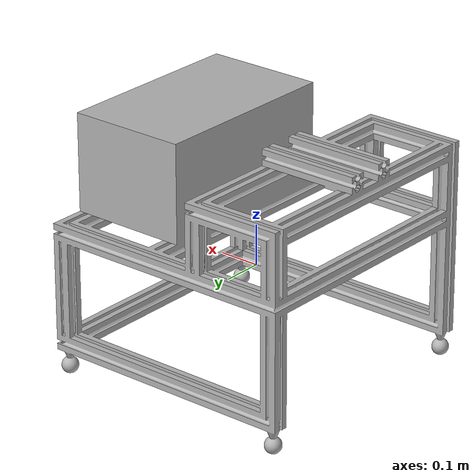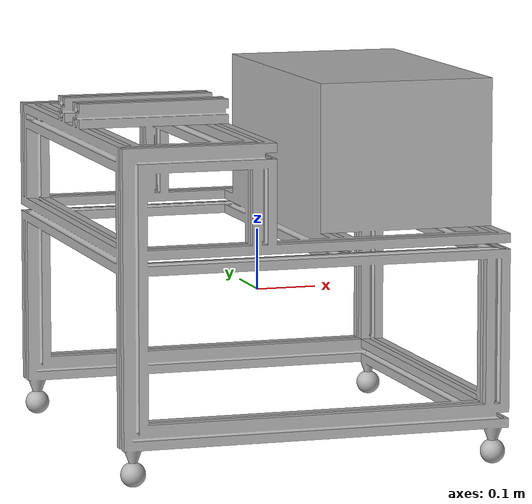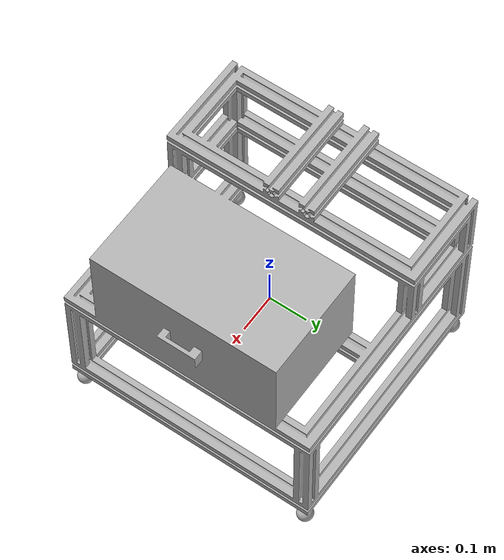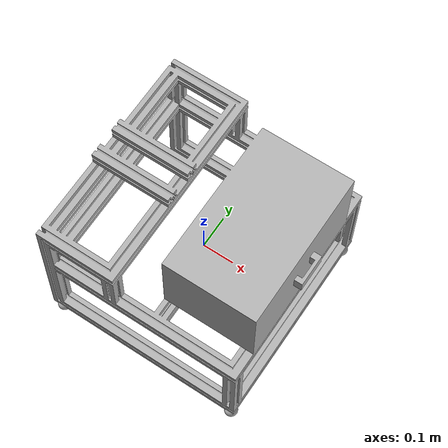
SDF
<?xml version='1.0'?>
<sdf version='1.7'>
  <model name='arm_base'>
    <link name='link'>
      <inertial>
        <mass>1</mass>
        <inertia>
          <ixx>0.166667</ixx>
          <ixy>0</ixy>
          <ixz>0</ixz>
          <iyy>0.166667</iyy>
          <iyz>0</iyz>
          <izz>0.166667</izz>
        </inertia>
        <pose>0 0 0 0 -0 0</pose>
      </inertial>
      <self_collide>0</self_collide>
      <enable_wind>0</enable_wind>
      <kinematic>0</kinematic>
      <pose>0 0 0 0 -0 0</pose>
      <gravity>1</gravity>
      <visual name='visual1'>
        <cast_shadows>0</cast_shadows>
        <geometry>
          <mesh>
            <uri>model://arm_base/meshes/arm_base_default.dae</uri>
          </mesh>
        </geometry>
        <material>
          <emissive>0 0 0 1</emissive>
          <ambient>0.3 0.3 0.3 1</ambient>
          <diffuse>0.7 0.7 0.7 1</diffuse>
          <shader type='pixel'>
            <normal_map>__default__</normal_map>
          </shader>
        </material>
        <pose>0 0 -0.25 0 -0 0</pose>
        <transparency>0</transparency>
      </visual>
      <collision name='collision'>
        <laser_retro>0</laser_retro>
        <max_contacts>10</max_contacts>
        <pose>0 0 0 0 -0 0</pose>
        <geometry>
          <box>
            <size>0.7 0.7 0.52</size>
          </box>
        </geometry>
        <surface>
          <friction>
            <ode>
              <mu>1</mu>
              <mu2>1</mu2>
              <fdir1>0 0 0</fdir1>
              <slip1>0</slip1>
              <slip2>0</slip2>
            </ode>
            <torsional>
              <coefficient>1</coefficient>
              <patch_radius>0</patch_radius>
              <surface_radius>0</surface_radius>
              <use_patch_radius>1</use_patch_radius>
              <ode>
                <slip>0</slip>
              </ode>
            </torsional>
          </friction>
          <bounce>
            <restitution_coefficient>0</restitution_coefficient>
            <threshold>1e+06</threshold>
          </bounce>
          <contact>
            <collide_without_contact>0</collide_without_contact>
            <collide_without_contact_bitmask>1</collide_without_contact_bitmask>
            <collide_bitmask>1</collide_bitmask>
            <ode>
              <soft_cfm>0</soft_cfm>
              <soft_erp>0.2</soft_erp>
              <kp>1e+13</kp>
              <kd>1</kd>
              <max_vel>0.01</max_vel>
              <min_depth>0</min_depth>
            </ode>
            <bullet>
              <split_impulse>1</split_impulse>
              <split_impulse_penetration_threshold>-0.01</split_impulse_penetration_threshold>
              <soft_cfm>0</soft_cfm>
              <soft_erp>0.2</soft_erp>
              <kp>1e+13</kp>
              <kd>1</kd>
            </bullet>
          </contact>
        </surface>
      </collision>
    </link>
    <static>1</static>
    <allow_auto_disable>1</allow_auto_disable>
  </model>
</sdf>
